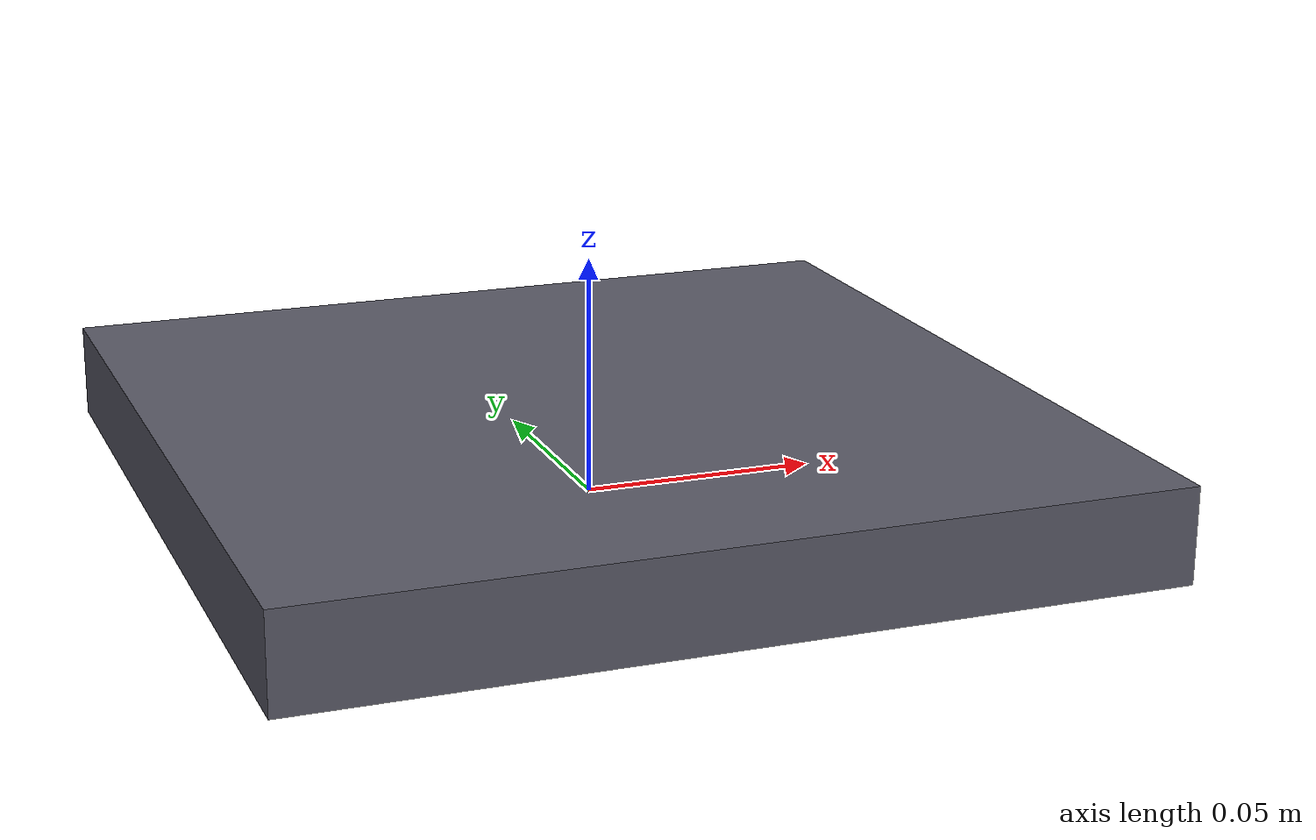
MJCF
<mujoco model="microduck_launcher">
    <compiler angle="radian" autolimits="true"/>

    <worldbody>
        <body name="plate" pos="0 0 0.01">
            <freejoint name="plate_free"/>
            <inertial pos="0 0 0" mass="50.0" diaginertia="0.5 0.5 1.0"/>
            <geom type="box" name="plate_geom" size="0.09 0.09 0.01"
                  rgba="0.35 0.35 0.4 1" friction="1.5 0.02 0.001"/>
        </body>
    </worldbody>
</mujoco>
